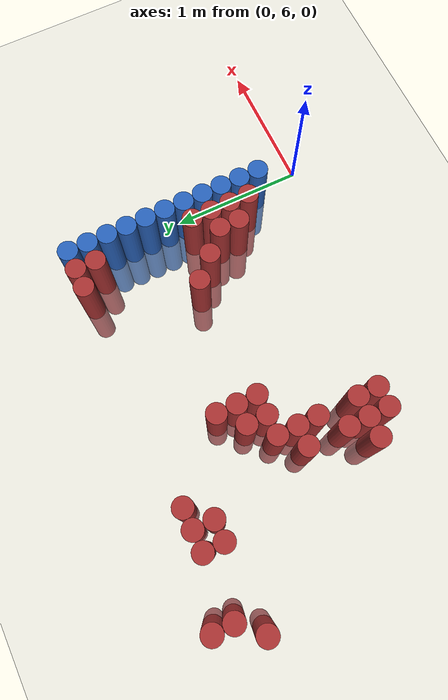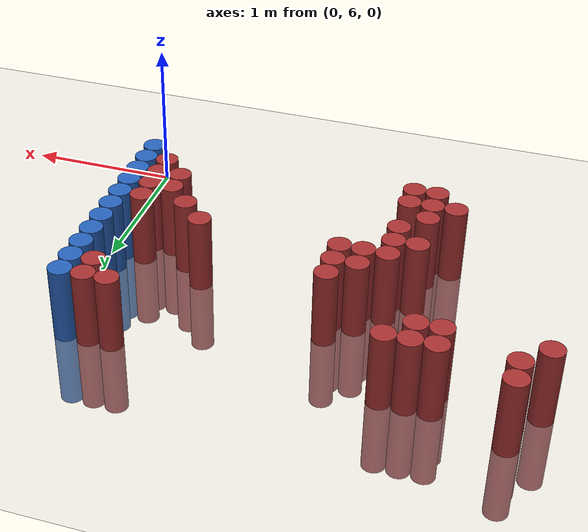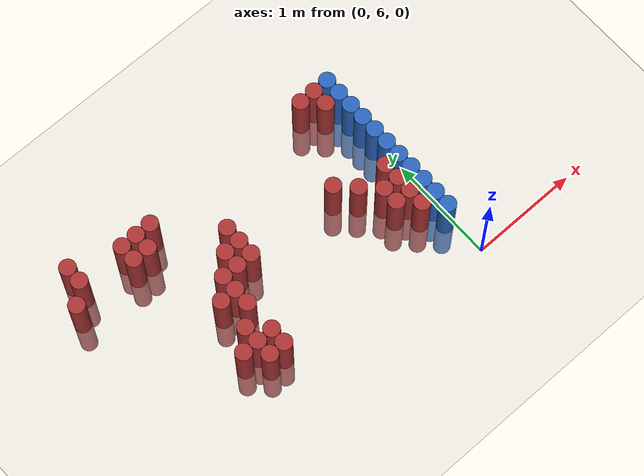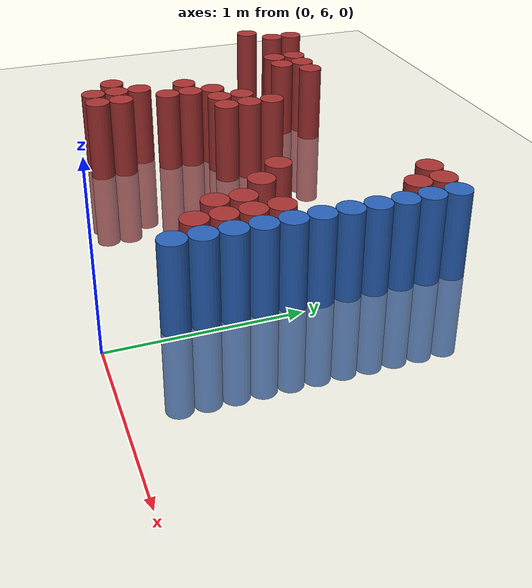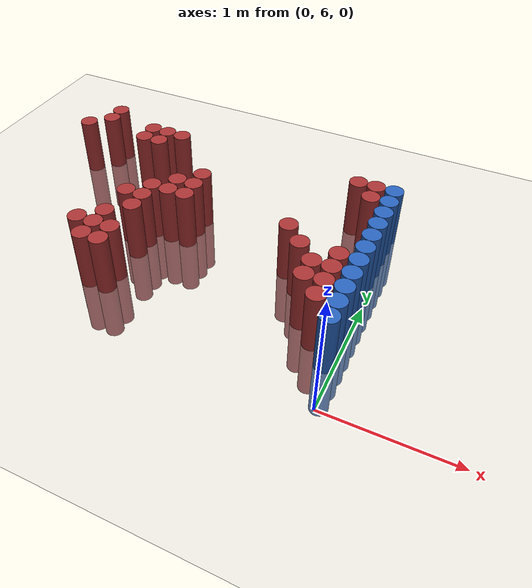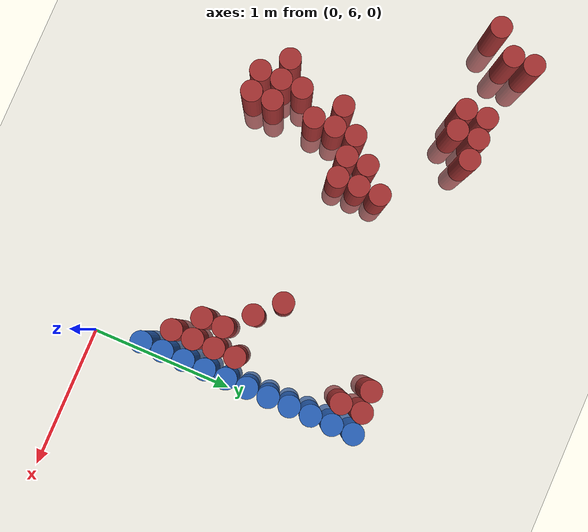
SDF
<sdf version="1.6">
 <world name="default">
  <model name="ground_plane">
   <static>1</static>
   <link name="link">
    <collision name="collision">
     <geometry><plane><normal>0 0 1</normal><size>100 100</size></plane></geometry>
     <surface><friction><ode><mu>100</mu><mu2>50</mu2></ode></friction></surface>
    </collision>
    <visual name="visual">
     <cast_shadows>0</cast_shadows>
     <geometry><plane><normal>0 0 1</normal><size>100 100</size></plane></geometry>
     <material>
      <script><uri>file://media/materials/scripts/gazebo.material</uri><name>Gazebo/Grey</name></script>
     </material>
    </visual>
   </link>
  </model>
  <model name="unit_cylinder_173">
   <static>1</static>
   <pose>-2.925000 7.725000 0.000000 0.000000 0.000000 0.000000</pose>
   <link name="link">
    <inertial>
     <mass>1</mass>
     <inertia><ixx>0.145833</ixx><ixy>0</ixy><ixz>0</ixz><iyy>0.145833</iyy><iyz>0</iyz><izz>0.125</izz></inertia>
    </inertial>
    <collision name="collision">
     <geometry><cylinder><radius>0.075000</radius><length>1</length></cylinder></geometry>
    </collision>
    <visual name="visual">
     <geometry><cylinder><radius>0.075000</radius><length>1</length></cylinder></geometry>
     <material>
      <ambient>0.648000 0.192000 0.192000 1</ambient>
      <diffuse>0.648000 0.192000 0.192000 1</diffuse>
     </material>
     <material>
      <script><name>Gazebo/Grey</name><uri>file://media/materials/scripts/gazebo.material</uri></script>
     </material>
    </visual>
   </link>
  </model>
  <model name="unit_cylinder_175">
   <static>1</static>
   <pose>-2.775000 7.875000 0.000000 0.000000 0.000000 0.000000</pose>
   <link name="link">
    <inertial>
     <mass>1</mass>
     <inertia><ixx>0.145833</ixx><ixy>0</ixy><ixz>0</ixz><iyy>0.145833</iyy><iyz>0</iyz><izz>0.125</izz></inertia>
    </inertial>
    <collision name="collision">
     <geometry><cylinder><radius>0.075000</radius><length>1</length></cylinder></geometry>
    </collision>
    <visual name="visual">
     <geometry><cylinder><radius>0.075000</radius><length>1</length></cylinder></geometry>
     <material>
      <ambient>0.648000 0.192000 0.192000 1</ambient>
      <diffuse>0.648000 0.192000 0.192000 1</diffuse>
     </material>
     <material>
      <script><name>Gazebo/Grey</name><uri>file://media/materials/scripts/gazebo.material</uri></script>
     </material>
    </visual>
   </link>
  </model>
  <model name="unit_cylinder_176">
   <static>1</static>
   <pose>-2.775000 8.025000 0.000000 0.000000 0.000000 0.000000</pose>
   <link name="link">
    <inertial>
     <mass>1</mass>
     <inertia><ixx>0.145833</ixx><ixy>0</ixy><ixz>0</ixz><iyy>0.145833</iyy><iyz>0</iyz><izz>0.125</izz></inertia>
    </inertial>
    <collision name="collision">
     <geometry><cylinder><radius>0.075000</radius><length>1</length></cylinder></geometry>
    </collision>
    <visual name="visual">
     <geometry><cylinder><radius>0.075000</radius><length>1</length></cylinder></geometry>
     <material>
      <ambient>0.648000 0.192000 0.192000 1</ambient>
      <diffuse>0.648000 0.192000 0.192000 1</diffuse>
     </material>
     <material>
      <script><name>Gazebo/Grey</name><uri>file://media/materials/scripts/gazebo.material</uri></script>
     </material>
    </visual>
   </link>
  </model>
  <model name="unit_cylinder_185">
   <static>1</static>
   <pose>-2.325000 7.725000 0.000000 0.000000 0.000000 0.000000</pose>
   <link name="link">
    <inertial>
     <mass>1</mass>
     <inertia><ixx>0.145833</ixx><ixy>0</ixy><ixz>0</ixz><iyy>0.145833</iyy><iyz>0</iyz><izz>0.125</izz></inertia>
    </inertial>
    <collision name="collision">
     <geometry><cylinder><radius>0.075000</radius><length>1</length></cylinder></geometry>
    </collision>
    <visual name="visual">
     <geometry><cylinder><radius>0.075000</radius><length>1</length></cylinder></geometry>
     <material>
      <ambient>0.648000 0.192000 0.192000 1</ambient>
      <diffuse>0.648000 0.192000 0.192000 1</diffuse>
     </material>
     <material>
      <script><name>Gazebo/Grey</name><uri>file://media/materials/scripts/gazebo.material</uri></script>
     </material>
    </visual>
   </link>
  </model>
  <model name="unit_cylinder_186">
   <static>1</static>
   <pose>-2.325000 7.875000 0.000000 0.000000 0.000000 0.000000</pose>
   <link name="link">
    <inertial>
     <mass>1</mass>
     <inertia><ixx>0.145833</ixx><ixy>0</ixy><ixz>0</ixz><iyy>0.145833</iyy><iyz>0</iyz><izz>0.125</izz></inertia>
    </inertial>
    <collision name="collision">
     <geometry><cylinder><radius>0.075000</radius><length>1</length></cylinder></geometry>
    </collision>
    <visual name="visual">
     <geometry><cylinder><radius>0.075000</radius><length>1</length></cylinder></geometry>
     <material>
      <ambient>0.648000 0.192000 0.192000 1</ambient>
      <diffuse>0.648000 0.192000 0.192000 1</diffuse>
     </material>
     <material>
      <script><name>Gazebo/Grey</name><uri>file://media/materials/scripts/gazebo.material</uri></script>
     </material>
    </visual>
   </link>
  </model>
  <model name="unit_cylinder_190">
   <static>1</static>
   <pose>-2.175000 6.525000 0.000000 0.000000 0.000000 0.000000</pose>
   <link name="link">
    <inertial>
     <mass>1</mass>
     <inertia><ixx>0.145833</ixx><ixy>0</ixy><ixz>0</ixz><iyy>0.145833</iyy><iyz>0</iyz><izz>0.125</izz></inertia>
    </inertial>
    <collision name="collision">
     <geometry><cylinder><radius>0.075000</radius><length>1</length></cylinder></geometry>
    </collision>
    <visual name="visual">
     <geometry><cylinder><radius>0.075000</radius><length>1</length></cylinder></geometry>
     <material>
      <ambient>0.648000 0.192000 0.192000 1</ambient>
      <diffuse>0.648000 0.192000 0.192000 1</diffuse>
     </material>
     <material>
      <script><name>Gazebo/Grey</name><uri>file://media/materials/scripts/gazebo.material</uri></script>
     </material>
    </visual>
   </link>
  </model>
  <model name="unit_cylinder_191">
   <static>1</static>
   <pose>-2.175000 7.725000 0.000000 0.000000 0.000000 0.000000</pose>
   <link name="link">
    <inertial>
     <mass>1</mass>
     <inertia><ixx>0.145833</ixx><ixy>0</ixy><ixz>0</ixz><iyy>0.145833</iyy><iyz>0</iyz><izz>0.125</izz></inertia>
    </inertial>
    <collision name="collision">
     <geometry><cylinder><radius>0.075000</radius><length>1</length></cylinder></geometry>
    </collision>
    <visual name="visual">
     <geometry><cylinder><radius>0.075000</radius><length>1</length></cylinder></geometry>
     <material>
      <ambient>0.648000 0.192000 0.192000 1</ambient>
      <diffuse>0.648000 0.192000 0.192000 1</diffuse>
     </material>
     <material>
      <script><name>Gazebo/Grey</name><uri>file://media/materials/scripts/gazebo.material</uri></script>
     </material>
    </visual>
   </link>
  </model>
  <model name="unit_cylinder_192">
   <static>1</static>
   <pose>-2.175000 7.875000 0.000000 0.000000 0.000000 0.000000</pose>
   <link name="link">
    <inertial>
     <mass>1</mass>
     <inertia><ixx>0.145833</ixx><ixy>0</ixy><ixz>0</ixz><iyy>0.145833</iyy><iyz>0</iyz><izz>0.125</izz></inertia>
    </inertial>
    <collision name="collision">
     <geometry><cylinder><radius>0.075000</radius><length>1</length></cylinder></geometry>
    </collision>
    <visual name="visual">
     <geometry><cylinder><radius>0.075000</radius><length>1</length></cylinder></geometry>
     <material>
      <ambient>0.648000 0.192000 0.192000 1</ambient>
      <diffuse>0.648000 0.192000 0.192000 1</diffuse>
     </material>
     <material>
      <script><name>Gazebo/Grey</name><uri>file://media/materials/scripts/gazebo.material</uri></script>
     </material>
    </visual>
   </link>
  </model>
  <model name="unit_cylinder_195">
   <static>1</static>
   <pose>-2.025000 6.375000 0.000000 0.000000 0.000000 0.000000</pose>
   <link name="link">
    <inertial>
     <mass>1</mass>
     <inertia><ixx>0.145833</ixx><ixy>0</ixy><ixz>0</ixz><iyy>0.145833</iyy><iyz>0</iyz><izz>0.125</izz></inertia>
    </inertial>
    <collision name="collision">
     <geometry><cylinder><radius>0.075000</radius><length>1</length></cylinder></geometry>
    </collision>
    <visual name="visual">
     <geometry><cylinder><radius>0.075000</radius><length>1</length></cylinder></geometry>
     <material>
      <ambient>0.648000 0.192000 0.192000 1</ambient>
      <diffuse>0.648000 0.192000 0.192000 1</diffuse>
     </material>
     <material>
      <script><name>Gazebo/Grey</name><uri>file://media/materials/scripts/gazebo.material</uri></script>
     </material>
    </visual>
   </link>
  </model>
  <model name="unit_cylinder_196">
   <static>1</static>
   <pose>-2.025000 6.525000 0.000000 0.000000 0.000000 0.000000</pose>
   <link name="link">
    <inertial>
     <mass>1</mass>
     <inertia><ixx>0.145833</ixx><ixy>0</ixy><ixz>0</ixz><iyy>0.145833</iyy><iyz>0</iyz><izz>0.125</izz></inertia>
    </inertial>
    <collision name="collision">
     <geometry><cylinder><radius>0.075000</radius><length>1</length></cylinder></geometry>
    </collision>
    <visual name="visual">
     <geometry><cylinder><radius>0.075000</radius><length>1</length></cylinder></geometry>
     <material>
      <ambient>0.648000 0.192000 0.192000 1</ambient>
      <diffuse>0.648000 0.192000 0.192000 1</diffuse>
     </material>
     <material>
      <script><name>Gazebo/Grey</name><uri>file://media/materials/scripts/gazebo.material</uri></script>
     </material>
    </visual>
   </link>
  </model>
  <model name="unit_cylinder_197">
   <static>1</static>
   <pose>-2.025000 6.675000 0.000000 0.000000 0.000000 0.000000</pose>
   <link name="link">
    <inertial>
     <mass>1</mass>
     <inertia><ixx>0.145833</ixx><ixy>0</ixy><ixz>0</ixz><iyy>0.145833</iyy><iyz>0</iyz><izz>0.125</izz></inertia>
    </inertial>
    <collision name="collision">
     <geometry><cylinder><radius>0.075000</radius><length>1</length></cylinder></geometry>
    </collision>
    <visual name="visual">
     <geometry><cylinder><radius>0.075000</radius><length>1</length></cylinder></geometry>
     <material>
      <ambient>0.648000 0.192000 0.192000 1</ambient>
      <diffuse>0.648000 0.192000 0.192000 1</diffuse>
     </material>
     <material>
      <script><name>Gazebo/Grey</name><uri>file://media/materials/scripts/gazebo.material</uri></script>
     </material>
    </visual>
   </link>
  </model>
  <model name="unit_cylinder_198">
   <static>1</static>
   <pose>-2.025000 6.975000 0.000000 0.000000 0.000000 0.000000</pose>
   <link name="link">
    <inertial>
     <mass>1</mass>
     <inertia><ixx>0.145833</ixx><ixy>0</ixy><ixz>0</ixz><iyy>0.145833</iyy><iyz>0</iyz><izz>0.125</izz></inertia>
    </inertial>
    <collision name="collision">
     <geometry><cylinder><radius>0.075000</radius><length>1</length></cylinder></geometry>
    </collision>
    <visual name="visual">
     <geometry><cylinder><radius>0.075000</radius><length>1</length></cylinder></geometry>
     <material>
      <ambient>0.648000 0.192000 0.192000 1</ambient>
      <diffuse>0.648000 0.192000 0.192000 1</diffuse>
     </material>
     <material>
      <script><name>Gazebo/Grey</name><uri>file://media/materials/scripts/gazebo.material</uri></script>
     </material>
    </visual>
   </link>
  </model>
  <model name="unit_cylinder_199">
   <static>1</static>
   <pose>-2.025000 7.875000 0.000000 0.000000 0.000000 0.000000</pose>
   <link name="link">
    <inertial>
     <mass>1</mass>
     <inertia><ixx>0.145833</ixx><ixy>0</ixy><ixz>0</ixz><iyy>0.145833</iyy><iyz>0</iyz><izz>0.125</izz></inertia>
    </inertial>
    <collision name="collision">
     <geometry><cylinder><radius>0.075000</radius><length>1</length></cylinder></geometry>
    </collision>
    <visual name="visual">
     <geometry><cylinder><radius>0.075000</radius><length>1</length></cylinder></geometry>
     <material>
      <ambient>0.648000 0.192000 0.192000 1</ambient>
      <diffuse>0.648000 0.192000 0.192000 1</diffuse>
     </material>
     <material>
      <script><name>Gazebo/Grey</name><uri>file://media/materials/scripts/gazebo.material</uri></script>
     </material>
    </visual>
   </link>
  </model>
  <model name="unit_cylinder_203">
   <static>1</static>
   <pose>-1.875000 6.375000 0.000000 0.000000 0.000000 0.000000</pose>
   <link name="link">
    <inertial>
     <mass>1</mass>
     <inertia><ixx>0.145833</ixx><ixy>0</ixy><ixz>0</ixz><iyy>0.145833</iyy><iyz>0</iyz><izz>0.125</izz></inertia>
    </inertial>
    <collision name="collision">
     <geometry><cylinder><radius>0.075000</radius><length>1</length></cylinder></geometry>
    </collision>
    <visual name="visual">
     <geometry><cylinder><radius>0.075000</radius><length>1</length></cylinder></geometry>
     <material>
      <ambient>0.648000 0.192000 0.192000 1</ambient>
      <diffuse>0.648000 0.192000 0.192000 1</diffuse>
     </material>
     <material>
      <script><name>Gazebo/Grey</name><uri>file://media/materials/scripts/gazebo.material</uri></script>
     </material>
    </visual>
   </link>
  </model>
  <model name="unit_cylinder_204">
   <static>1</static>
   <pose>-1.875000 6.525000 0.000000 0.000000 0.000000 0.000000</pose>
   <link name="link">
    <inertial>
     <mass>1</mass>
     <inertia><ixx>0.145833</ixx><ixy>0</ixy><ixz>0</ixz><iyy>0.145833</iyy><iyz>0</iyz><izz>0.125</izz></inertia>
    </inertial>
    <collision name="collision">
     <geometry><cylinder><radius>0.075000</radius><length>1</length></cylinder></geometry>
    </collision>
    <visual name="visual">
     <geometry><cylinder><radius>0.075000</radius><length>1</length></cylinder></geometry>
     <material>
      <ambient>0.648000 0.192000 0.192000 1</ambient>
      <diffuse>0.648000 0.192000 0.192000 1</diffuse>
     </material>
     <material>
      <script><name>Gazebo/Grey</name><uri>file://media/materials/scripts/gazebo.material</uri></script>
     </material>
    </visual>
   </link>
  </model>
  <model name="unit_cylinder_205">
   <static>1</static>
   <pose>-1.875000 6.825000 0.000000 0.000000 0.000000 0.000000</pose>
   <link name="link">
    <inertial>
     <mass>1</mass>
     <inertia><ixx>0.145833</ixx><ixy>0</ixy><ixz>0</ixz><iyy>0.145833</iyy><iyz>0</iyz><izz>0.125</izz></inertia>
    </inertial>
    <collision name="collision">
     <geometry><cylinder><radius>0.075000</radius><length>1</length></cylinder></geometry>
    </collision>
    <visual name="visual">
     <geometry><cylinder><radius>0.075000</radius><length>1</length></cylinder></geometry>
     <material>
      <ambient>0.648000 0.192000 0.192000 1</ambient>
      <diffuse>0.648000 0.192000 0.192000 1</diffuse>
     </material>
     <material>
      <script><name>Gazebo/Grey</name><uri>file://media/materials/scripts/gazebo.material</uri></script>
     </material>
    </visual>
   </link>
  </model>
  <model name="unit_cylinder_206">
   <static>1</static>
   <pose>-1.875000 6.975000 0.000000 0.000000 0.000000 0.000000</pose>
   <link name="link">
    <inertial>
     <mass>1</mass>
     <inertia><ixx>0.145833</ixx><ixy>0</ixy><ixz>0</ixz><iyy>0.145833</iyy><iyz>0</iyz><izz>0.125</izz></inertia>
    </inertial>
    <collision name="collision">
     <geometry><cylinder><radius>0.075000</radius><length>1</length></cylinder></geometry>
    </collision>
    <visual name="visual">
     <geometry><cylinder><radius>0.075000</radius><length>1</length></cylinder></geometry>
     <material>
      <ambient>0.648000 0.192000 0.192000 1</ambient>
      <diffuse>0.648000 0.192000 0.192000 1</diffuse>
     </material>
     <material>
      <script><name>Gazebo/Grey</name><uri>file://media/materials/scripts/gazebo.material</uri></script>
     </material>
    </visual>
   </link>
  </model>
  <model name="unit_cylinder_207">
   <static>1</static>
   <pose>-1.875000 7.125000 0.000000 0.000000 0.000000 0.000000</pose>
   <link name="link">
    <inertial>
     <mass>1</mass>
     <inertia><ixx>0.145833</ixx><ixy>0</ixy><ixz>0</ixz><iyy>0.145833</iyy><iyz>0</iyz><izz>0.125</izz></inertia>
    </inertial>
    <collision name="collision">
     <geometry><cylinder><radius>0.075000</radius><length>1</length></cylinder></geometry>
    </collision>
    <visual name="visual">
     <geometry><cylinder><radius>0.075000</radius><length>1</length></cylinder></geometry>
     <material>
      <ambient>0.648000 0.192000 0.192000 1</ambient>
      <diffuse>0.648000 0.192000 0.192000 1</diffuse>
     </material>
     <material>
      <script><name>Gazebo/Grey</name><uri>file://media/materials/scripts/gazebo.material</uri></script>
     </material>
    </visual>
   </link>
  </model>
  <model name="unit_cylinder_209">
   <static>1</static>
   <pose>-1.725000 7.125000 0.000000 0.000000 0.000000 0.000000</pose>
   <link name="link">
    <inertial>
     <mass>1</mass>
     <inertia><ixx>0.145833</ixx><ixy>0</ixy><ixz>0</ixz><iyy>0.145833</iyy><iyz>0</iyz><izz>0.125</izz></inertia>
    </inertial>
    <collision name="collision">
     <geometry><cylinder><radius>0.075000</radius><length>1</length></cylinder></geometry>
    </collision>
    <visual name="visual">
     <geometry><cylinder><radius>0.075000</radius><length>1</length></cylinder></geometry>
     <material>
      <ambient>0.648000 0.192000 0.192000 1</ambient>
      <diffuse>0.648000 0.192000 0.192000 1</diffuse>
     </material>
     <material>
      <script><name>Gazebo/Grey</name><uri>file://media/materials/scripts/gazebo.material</uri></script>
     </material>
    </visual>
   </link>
  </model>
  <model name="unit_cylinder_210">
   <static>1</static>
   <pose>-1.725000 7.275000 0.000000 0.000000 0.000000 0.000000</pose>
   <link name="link">
    <inertial>
     <mass>1</mass>
     <inertia><ixx>0.145833</ixx><ixy>0</ixy><ixz>0</ixz><iyy>0.145833</iyy><iyz>0</iyz><izz>0.125</izz></inertia>
    </inertial>
    <collision name="collision">
     <geometry><cylinder><radius>0.075000</radius><length>1</length></cylinder></geometry>
    </collision>
    <visual name="visual">
     <geometry><cylinder><radius>0.075000</radius><length>1</length></cylinder></geometry>
     <material>
      <ambient>0.648000 0.192000 0.192000 1</ambient>
      <diffuse>0.648000 0.192000 0.192000 1</diffuse>
     </material>
     <material>
      <script><name>Gazebo/Grey</name><uri>file://media/materials/scripts/gazebo.material</uri></script>
     </material>
    </visual>
   </link>
  </model>
  <model name="unit_cylinder_211">
   <static>1</static>
   <pose>-1.575000 7.125000 0.000000 0.000000 0.000000 0.000000</pose>
   <link name="link">
    <inertial>
     <mass>1</mass>
     <inertia><ixx>0.145833</ixx><ixy>0</ixy><ixz>0</ixz><iyy>0.145833</iyy><iyz>0</iyz><izz>0.125</izz></inertia>
    </inertial>
    <collision name="collision">
     <geometry><cylinder><radius>0.075000</radius><length>1</length></cylinder></geometry>
    </collision>
    <visual name="visual">
     <geometry><cylinder><radius>0.075000</radius><length>1</length></cylinder></geometry>
     <material>
      <ambient>0.648000 0.192000 0.192000 1</ambient>
      <diffuse>0.648000 0.192000 0.192000 1</diffuse>
     </material>
     <material>
      <script><name>Gazebo/Grey</name><uri>file://media/materials/scripts/gazebo.material</uri></script>
     </material>
    </visual>
   </link>
  </model>
  <model name="unit_cylinder_212">
   <static>1</static>
   <pose>-1.575000 7.275000 0.000000 0.000000 0.000000 0.000000</pose>
   <link name="link">
    <inertial>
     <mass>1</mass>
     <inertia><ixx>0.145833</ixx><ixy>0</ixy><ixz>0</ixz><iyy>0.145833</iyy><iyz>0</iyz><izz>0.125</izz></inertia>
    </inertial>
    <collision name="collision">
     <geometry><cylinder><radius>0.075000</radius><length>1</length></cylinder></geometry>
    </collision>
    <visual name="visual">
     <geometry><cylinder><radius>0.075000</radius><length>1</length></cylinder></geometry>
     <material>
      <ambient>0.648000 0.192000 0.192000 1</ambient>
      <diffuse>0.648000 0.192000 0.192000 1</diffuse>
     </material>
     <material>
      <script><name>Gazebo/Grey</name><uri>file://media/materials/scripts/gazebo.material</uri></script>
     </material>
    </visual>
   </link>
  </model>
  <model name="unit_cylinder_213">
   <static>1</static>
   <pose>-1.575000 7.425000 0.000000 0.000000 0.000000 0.000000</pose>
   <link name="link">
    <inertial>
     <mass>1</mass>
     <inertia><ixx>0.145833</ixx><ixy>0</ixy><ixz>0</ixz><iyy>0.145833</iyy><iyz>0</iyz><izz>0.125</izz></inertia>
    </inertial>
    <collision name="collision">
     <geometry><cylinder><radius>0.075000</radius><length>1</length></cylinder></geometry>
    </collision>
    <visual name="visual">
     <geometry><cylinder><radius>0.075000</radius><length>1</length></cylinder></geometry>
     <material>
      <ambient>0.648000 0.192000 0.192000 1</ambient>
      <diffuse>0.648000 0.192000 0.192000 1</diffuse>
     </material>
     <material>
      <script><name>Gazebo/Grey</name><uri>file://media/materials/scripts/gazebo.material</uri></script>
     </material>
    </visual>
   </link>
  </model>
  <model name="unit_cylinder_219">
   <static>1</static>
   <pose>-0.675000 7.125000 0.000000 0.000000 0.000000 0.000000</pose>
   <link name="link">
    <inertial>
     <mass>1</mass>
     <inertia><ixx>0.145833</ixx><ixy>0</ixy><ixz>0</ixz><iyy>0.145833</iyy><iyz>0</iyz><izz>0.125</izz></inertia>
    </inertial>
    <collision name="collision">
     <geometry><cylinder><radius>0.075000</radius><length>1</length></cylinder></geometry>
    </collision>
    <visual name="visual">
     <geometry><cylinder><radius>0.075000</radius><length>1</length></cylinder></geometry>
     <material>
      <ambient>0.648000 0.192000 0.192000 1</ambient>
      <diffuse>0.648000 0.192000 0.192000 1</diffuse>
     </material>
     <material>
      <script><name>Gazebo/Grey</name><uri>file://media/materials/scripts/gazebo.material</uri></script>
     </material>
    </visual>
   </link>
  </model>
  <model name="unit_cylinder_223">
   <static>1</static>
   <pose>-0.525000 6.975000 0.000000 0.000000 0.000000 0.000000</pose>
   <link name="link">
    <inertial>
     <mass>1</mass>
     <inertia><ixx>0.145833</ixx><ixy>0</ixy><ixz>0</ixz><iyy>0.145833</iyy><iyz>0</iyz><izz>0.125</izz></inertia>
    </inertial>
    <collision name="collision">
     <geometry><cylinder><radius>0.075000</radius><length>1</length></cylinder></geometry>
    </collision>
    <visual name="visual">
     <geometry><cylinder><radius>0.075000</radius><length>1</length></cylinder></geometry>
     <material>
      <ambient>0.648000 0.192000 0.192000 1</ambient>
      <diffuse>0.648000 0.192000 0.192000 1</diffuse>
     </material>
     <material>
      <script><name>Gazebo/Grey</name><uri>file://media/materials/scripts/gazebo.material</uri></script>
     </material>
    </visual>
   </link>
  </model>
  <model name="unit_cylinder_228">
   <static>1</static>
   <pose>-0.375000 6.675000 0.000000 0.000000 0.000000 0.000000</pose>
   <link name="link">
    <inertial>
     <mass>1</mass>
     <inertia><ixx>0.145833</ixx><ixy>0</ixy><ixz>0</ixz><iyy>0.145833</iyy><iyz>0</iyz><izz>0.125</izz></inertia>
    </inertial>
    <collision name="collision">
     <geometry><cylinder><radius>0.075000</radius><length>1</length></cylinder></geometry>
    </collision>
    <visual name="visual">
     <geometry><cylinder><radius>0.075000</radius><length>1</length></cylinder></geometry>
     <material>
      <ambient>0.648000 0.192000 0.192000 1</ambient>
      <diffuse>0.648000 0.192000 0.192000 1</diffuse>
     </material>
     <material>
      <script><name>Gazebo/Grey</name><uri>file://media/materials/scripts/gazebo.material</uri></script>
     </material>
    </visual>
   </link>
  </model>
  <model name="unit_cylinder_229">
   <static>1</static>
   <pose>-0.375000 6.825000 0.000000 0.000000 0.000000 0.000000</pose>
   <link name="link">
    <inertial>
     <mass>1</mass>
     <inertia><ixx>0.145833</ixx><ixy>0</ixy><ixz>0</ixz><iyy>0.145833</iyy><iyz>0</iyz><izz>0.125</izz></inertia>
    </inertial>
    <collision name="collision">
     <geometry><cylinder><radius>0.075000</radius><length>1</length></cylinder></geometry>
    </collision>
    <visual name="visual">
     <geometry><cylinder><radius>0.075000</radius><length>1</length></cylinder></geometry>
     <material>
      <ambient>0.648000 0.192000 0.192000 1</ambient>
      <diffuse>0.648000 0.192000 0.192000 1</diffuse>
     </material>
     <material>
      <script><name>Gazebo/Grey</name><uri>file://media/materials/scripts/gazebo.material</uri></script>
     </material>
    </visual>
   </link>
  </model>
  <model name="unit_cylinder_230">
   <static>1</static>
   <pose>-0.375000 7.875000 0.000000 0.000000 0.000000 0.000000</pose>
   <link name="link">
    <inertial>
     <mass>1</mass>
     <inertia><ixx>0.145833</ixx><ixy>0</ixy><ixz>0</ixz><iyy>0.145833</iyy><iyz>0</iyz><izz>0.125</izz></inertia>
    </inertial>
    <collision name="collision">
     <geometry><cylinder><radius>0.075000</radius><length>1</length></cylinder></geometry>
    </collision>
    <visual name="visual">
     <geometry><cylinder><radius>0.075000</radius><length>1</length></cylinder></geometry>
     <material>
      <ambient>0.648000 0.192000 0.192000 1</ambient>
      <diffuse>0.648000 0.192000 0.192000 1</diffuse>
     </material>
     <material>
      <script><name>Gazebo/Grey</name><uri>file://media/materials/scripts/gazebo.material</uri></script>
     </material>
    </visual>
   </link>
  </model>
  <model name="unit_cylinder_233">
   <static>1</static>
   <pose>-0.225000 6.525000 0.000000 0.000000 0.000000 0.000000</pose>
   <link name="link">
    <inertial>
     <mass>1</mass>
     <inertia><ixx>0.145833</ixx><ixy>0</ixy><ixz>0</ixz><iyy>0.145833</iyy><iyz>0</iyz><izz>0.125</izz></inertia>
    </inertial>
    <collision name="collision">
     <geometry><cylinder><radius>0.075000</radius><length>1</length></cylinder></geometry>
    </collision>
    <visual name="visual">
     <geometry><cylinder><radius>0.075000</radius><length>1</length></cylinder></geometry>
     <material>
      <ambient>0.648000 0.192000 0.192000 1</ambient>
      <diffuse>0.648000 0.192000 0.192000 1</diffuse>
     </material>
     <material>
      <script><name>Gazebo/Grey</name><uri>file://media/materials/scripts/gazebo.material</uri></script>
     </material>
    </visual>
   </link>
  </model>
  <model name="unit_cylinder_234">
   <static>1</static>
   <pose>-0.225000 6.675000 0.000000 0.000000 0.000000 0.000000</pose>
   <link name="link">
    <inertial>
     <mass>1</mass>
     <inertia><ixx>0.145833</ixx><ixy>0</ixy><ixz>0</ixz><iyy>0.145833</iyy><iyz>0</iyz><izz>0.125</izz></inertia>
    </inertial>
    <collision name="collision">
     <geometry><cylinder><radius>0.075000</radius><length>1</length></cylinder></geometry>
    </collision>
    <visual name="visual">
     <geometry><cylinder><radius>0.075000</radius><length>1</length></cylinder></geometry>
     <material>
      <ambient>0.648000 0.192000 0.192000 1</ambient>
      <diffuse>0.648000 0.192000 0.192000 1</diffuse>
     </material>
     <material>
      <script><name>Gazebo/Grey</name><uri>file://media/materials/scripts/gazebo.material</uri></script>
     </material>
    </visual>
   </link>
  </model>
  <model name="unit_cylinder_235">
   <static>1</static>
   <pose>-0.225000 6.825000 0.000000 0.000000 0.000000 0.000000</pose>
   <link name="link">
    <inertial>
     <mass>1</mass>
     <inertia><ixx>0.145833</ixx><ixy>0</ixy><ixz>0</ixz><iyy>0.145833</iyy><iyz>0</iyz><izz>0.125</izz></inertia>
    </inertial>
    <collision name="collision">
     <geometry><cylinder><radius>0.075000</radius><length>1</length></cylinder></geometry>
    </collision>
    <visual name="visual">
     <geometry><cylinder><radius>0.075000</radius><length>1</length></cylinder></geometry>
     <material>
      <ambient>0.648000 0.192000 0.192000 1</ambient>
      <diffuse>0.648000 0.192000 0.192000 1</diffuse>
     </material>
     <material>
      <script><name>Gazebo/Grey</name><uri>file://media/materials/scripts/gazebo.material</uri></script>
     </material>
    </visual>
   </link>
  </model>
  <model name="unit_cylinder_236">
   <static>1</static>
   <pose>-0.225000 6.975000 0.000000 0.000000 0.000000 0.000000</pose>
   <link name="link">
    <inertial>
     <mass>1</mass>
     <inertia><ixx>0.145833</ixx><ixy>0</ixy><ixz>0</ixz><iyy>0.145833</iyy><iyz>0</iyz><izz>0.125</izz></inertia>
    </inertial>
    <collision name="collision">
     <geometry><cylinder><radius>0.075000</radius><length>1</length></cylinder></geometry>
    </collision>
    <visual name="visual">
     <geometry><cylinder><radius>0.075000</radius><length>1</length></cylinder></geometry>
     <material>
      <ambient>0.648000 0.192000 0.192000 1</ambient>
      <diffuse>0.648000 0.192000 0.192000 1</diffuse>
     </material>
     <material>
      <script><name>Gazebo/Grey</name><uri>file://media/materials/scripts/gazebo.material</uri></script>
     </material>
    </visual>
   </link>
  </model>
  <model name="unit_cylinder_237">
   <static>1</static>
   <pose>-0.225000 7.725000 0.000000 0.000000 0.000000 0.000000</pose>
   <link name="link">
    <inertial>
     <mass>1</mass>
     <inertia><ixx>0.145833</ixx><ixy>0</ixy><ixz>0</ixz><iyy>0.145833</iyy><iyz>0</iyz><izz>0.125</izz></inertia>
    </inertial>
    <collision name="collision">
     <geometry><cylinder><radius>0.075000</radius><length>1</length></cylinder></geometry>
    </collision>
    <visual name="visual">
     <geometry><cylinder><radius>0.075000</radius><length>1</length></cylinder></geometry>
     <material>
      <ambient>0.648000 0.192000 0.192000 1</ambient>
      <diffuse>0.648000 0.192000 0.192000 1</diffuse>
     </material>
     <material>
      <script><name>Gazebo/Grey</name><uri>file://media/materials/scripts/gazebo.material</uri></script>
     </material>
    </visual>
   </link>
  </model>
  <model name="unit_cylinder_238">
   <static>1</static>
   <pose>-0.225000 7.875000 0.000000 0.000000 0.000000 0.000000</pose>
   <link name="link">
    <inertial>
     <mass>1</mass>
     <inertia><ixx>0.145833</ixx><ixy>0</ixy><ixz>0</ixz><iyy>0.145833</iyy><iyz>0</iyz><izz>0.125</izz></inertia>
    </inertial>
    <collision name="collision">
     <geometry><cylinder><radius>0.075000</radius><length>1</length></cylinder></geometry>
    </collision>
    <visual name="visual">
     <geometry><cylinder><radius>0.075000</radius><length>1</length></cylinder></geometry>
     <material>
      <ambient>0.648000 0.192000 0.192000 1</ambient>
      <diffuse>0.648000 0.192000 0.192000 1</diffuse>
     </material>
     <material>
      <script><name>Gazebo/Grey</name><uri>file://media/materials/scripts/gazebo.material</uri></script>
     </material>
    </visual>
   </link>
  </model>
  <model name="unit_cylinder_253">
   <static>1</static>
   <pose>-0.075000 6.375000 0.000000 0.000000 0.000000 0.000000</pose>
   <link name="link">
    <inertial>
     <mass>1</mass>
     <inertia><ixx>0.145833</ixx><ixy>0</ixy><ixz>0</ixz><iyy>0.145833</iyy><iyz>0</iyz><izz>0.125</izz></inertia>
    </inertial>
    <collision name="collision">
     <geometry><cylinder><radius>0.075000</radius><length>1</length></cylinder></geometry>
    </collision>
    <visual name="visual">
     <geometry><cylinder><radius>0.075000</radius><length>1</length></cylinder></geometry>
     <material>
      <ambient>0.152000 0.379000 0.720000 1</ambient>
      <diffuse>0.152000 0.379000 0.720000 1</diffuse>
     </material>
     <material>
      <script><name>Gazebo/Grey</name><uri>file://media/materials/scripts/gazebo.material</uri></script>
     </material>
    </visual>
   </link>
  </model>
  <model name="unit_cylinder_254">
   <static>1</static>
   <pose>-0.075000 6.525000 0.000000 0.000000 0.000000 0.000000</pose>
   <link name="link">
    <inertial>
     <mass>1</mass>
     <inertia><ixx>0.145833</ixx><ixy>0</ixy><ixz>0</ixz><iyy>0.145833</iyy><iyz>0</iyz><izz>0.125</izz></inertia>
    </inertial>
    <collision name="collision">
     <geometry><cylinder><radius>0.075000</radius><length>1</length></cylinder></geometry>
    </collision>
    <visual name="visual">
     <geometry><cylinder><radius>0.075000</radius><length>1</length></cylinder></geometry>
     <material>
      <ambient>0.152000 0.379000 0.720000 1</ambient>
      <diffuse>0.152000 0.379000 0.720000 1</diffuse>
     </material>
     <material>
      <script><name>Gazebo/Grey</name><uri>file://media/materials/scripts/gazebo.material</uri></script>
     </material>
    </visual>
   </link>
  </model>
  <model name="unit_cylinder_255">
   <static>1</static>
   <pose>-0.075000 6.675000 0.000000 0.000000 0.000000 0.000000</pose>
   <link name="link">
    <inertial>
     <mass>1</mass>
     <inertia><ixx>0.145833</ixx><ixy>0</ixy><ixz>0</ixz><iyy>0.145833</iyy><iyz>0</iyz><izz>0.125</izz></inertia>
    </inertial>
    <collision name="collision">
     <geometry><cylinder><radius>0.075000</radius><length>1</length></cylinder></geometry>
    </collision>
    <visual name="visual">
     <geometry><cylinder><radius>0.075000</radius><length>1</length></cylinder></geometry>
     <material>
      <ambient>0.152000 0.379000 0.720000 1</ambient>
      <diffuse>0.152000 0.379000 0.720000 1</diffuse>
     </material>
     <material>
      <script><name>Gazebo/Grey</name><uri>file://media/materials/scripts/gazebo.material</uri></script>
     </material>
    </visual>
   </link>
  </model>
  <model name="unit_cylinder_256">
   <static>1</static>
   <pose>-0.075000 6.825000 0.000000 0.000000 0.000000 0.000000</pose>
   <link name="link">
    <inertial>
     <mass>1</mass>
     <inertia><ixx>0.145833</ixx><ixy>0</ixy><ixz>0</ixz><iyy>0.145833</iyy><iyz>0</iyz><izz>0.125</izz></inertia>
    </inertial>
    <collision name="collision">
     <geometry><cylinder><radius>0.075000</radius><length>1</length></cylinder></geometry>
    </collision>
    <visual name="visual">
     <geometry><cylinder><radius>0.075000</radius><length>1</length></cylinder></geometry>
     <material>
      <ambient>0.152000 0.379000 0.720000 1</ambient>
      <diffuse>0.152000 0.379000 0.720000 1</diffuse>
     </material>
     <material>
      <script><name>Gazebo/Grey</name><uri>file://media/materials/scripts/gazebo.material</uri></script>
     </material>
    </visual>
   </link>
  </model>
  <model name="unit_cylinder_257">
   <static>1</static>
   <pose>-0.075000 6.975000 0.000000 0.000000 0.000000 0.000000</pose>
   <link name="link">
    <inertial>
     <mass>1</mass>
     <inertia><ixx>0.145833</ixx><ixy>0</ixy><ixz>0</ixz><iyy>0.145833</iyy><iyz>0</iyz><izz>0.125</izz></inertia>
    </inertial>
    <collision name="collision">
     <geometry><cylinder><radius>0.075000</radius><length>1</length></cylinder></geometry>
    </collision>
    <visual name="visual">
     <geometry><cylinder><radius>0.075000</radius><length>1</length></cylinder></geometry>
     <material>
      <ambient>0.152000 0.379000 0.720000 1</ambient>
      <diffuse>0.152000 0.379000 0.720000 1</diffuse>
     </material>
     <material>
      <script><name>Gazebo/Grey</name><uri>file://media/materials/scripts/gazebo.material</uri></script>
     </material>
    </visual>
   </link>
  </model>
  <model name="unit_cylinder_258">
   <static>1</static>
   <pose>-0.075000 7.125000 0.000000 0.000000 0.000000 0.000000</pose>
   <link name="link">
    <inertial>
     <mass>1</mass>
     <inertia><ixx>0.145833</ixx><ixy>0</ixy><ixz>0</ixz><iyy>0.145833</iyy><iyz>0</iyz><izz>0.125</izz></inertia>
    </inertial>
    <collision name="collision">
     <geometry><cylinder><radius>0.075000</radius><length>1</length></cylinder></geometry>
    </collision>
    <visual name="visual">
     <geometry><cylinder><radius>0.075000</radius><length>1</length></cylinder></geometry>
     <material>
      <ambient>0.152000 0.379000 0.720000 1</ambient>
      <diffuse>0.152000 0.379000 0.720000 1</diffuse>
     </material>
     <material>
      <script><name>Gazebo/Grey</name><uri>file://media/materials/scripts/gazebo.material</uri></script>
     </material>
    </visual>
   </link>
  </model>
  <model name="unit_cylinder_259">
   <static>1</static>
   <pose>-0.075000 7.275000 0.000000 0.000000 0.000000 0.000000</pose>
   <link name="link">
    <inertial>
     <mass>1</mass>
     <inertia><ixx>0.145833</ixx><ixy>0</ixy><ixz>0</ixz><iyy>0.145833</iyy><iyz>0</iyz><izz>0.125</izz></inertia>
    </inertial>
    <collision name="collision">
     <geometry><cylinder><radius>0.075000</radius><length>1</length></cylinder></geometry>
    </collision>
    <visual name="visual">
     <geometry><cylinder><radius>0.075000</radius><length>1</length></cylinder></geometry>
     <material>
      <ambient>0.152000 0.379000 0.720000 1</ambient>
      <diffuse>0.152000 0.379000 0.720000 1</diffuse>
     </material>
     <material>
      <script><name>Gazebo/Grey</name><uri>file://media/materials/scripts/gazebo.material</uri></script>
     </material>
    </visual>
   </link>
  </model>
  <model name="unit_cylinder_260">
   <static>1</static>
   <pose>-0.075000 7.425000 0.000000 0.000000 0.000000 0.000000</pose>
   <link name="link">
    <inertial>
     <mass>1</mass>
     <inertia><ixx>0.145833</ixx><ixy>0</ixy><ixz>0</ixz><iyy>0.145833</iyy><iyz>0</iyz><izz>0.125</izz></inertia>
    </inertial>
    <collision name="collision">
     <geometry><cylinder><radius>0.075000</radius><length>1</length></cylinder></geometry>
    </collision>
    <visual name="visual">
     <geometry><cylinder><radius>0.075000</radius><length>1</length></cylinder></geometry>
     <material>
      <ambient>0.152000 0.379000 0.720000 1</ambient>
      <diffuse>0.152000 0.379000 0.720000 1</diffuse>
     </material>
     <material>
      <script><name>Gazebo/Grey</name><uri>file://media/materials/scripts/gazebo.material</uri></script>
     </material>
    </visual>
   </link>
  </model>
  <model name="unit_cylinder_261">
   <static>1</static>
   <pose>-0.075000 7.575000 0.000000 0.000000 0.000000 0.000000</pose>
   <link name="link">
    <inertial>
     <mass>1</mass>
     <inertia><ixx>0.145833</ixx><ixy>0</ixy><ixz>0</ixz><iyy>0.145833</iyy><iyz>0</iyz><izz>0.125</izz></inertia>
    </inertial>
    <collision name="collision">
     <geometry><cylinder><radius>0.075000</radius><length>1</length></cylinder></geometry>
    </collision>
    <visual name="visual">
     <geometry><cylinder><radius>0.075000</radius><length>1</length></cylinder></geometry>
     <material>
      <ambient>0.152000 0.379000 0.720000 1</ambient>
      <diffuse>0.152000 0.379000 0.720000 1</diffuse>
     </material>
     <material>
      <script><name>Gazebo/Grey</name><uri>file://media/materials/scripts/gazebo.material</uri></script>
     </material>
    </visual>
   </link>
  </model>
  <model name="unit_cylinder_262">
   <static>1</static>
   <pose>-0.075000 7.725000 0.000000 0.000000 0.000000 0.000000</pose>
   <link name="link">
    <inertial>
     <mass>1</mass>
     <inertia><ixx>0.145833</ixx><ixy>0</ixy><ixz>0</ixz><iyy>0.145833</iyy><iyz>0</iyz><izz>0.125</izz></inertia>
    </inertial>
    <collision name="collision">
     <geometry><cylinder><radius>0.075000</radius><length>1</length></cylinder></geometry>
    </collision>
    <visual name="visual">
     <geometry><cylinder><radius>0.075000</radius><length>1</length></cylinder></geometry>
     <material>
      <ambient>0.152000 0.379000 0.720000 1</ambient>
      <diffuse>0.152000 0.379000 0.720000 1</diffuse>
     </material>
     <material>
      <script><name>Gazebo/Grey</name><uri>file://media/materials/scripts/gazebo.material</uri></script>
     </material>
    </visual>
   </link>
  </model>
  <model name="unit_cylinder_263">
   <static>1</static>
   <pose>-0.075000 7.875000 0.000000 0.000000 0.000000 0.000000</pose>
   <link name="link">
    <inertial>
     <mass>1</mass>
     <inertia><ixx>0.145833</ixx><ixy>0</ixy><ixz>0</ixz><iyy>0.145833</iyy><iyz>0</iyz><izz>0.125</izz></inertia>
    </inertial>
    <collision name="collision">
     <geometry><cylinder><radius>0.075000</radius><length>1</length></cylinder></geometry>
    </collision>
    <visual name="visual">
     <geometry><cylinder><radius>0.075000</radius><length>1</length></cylinder></geometry>
     <material>
      <ambient>0.152000 0.379000 0.720000 1</ambient>
      <diffuse>0.152000 0.379000 0.720000 1</diffuse>
     </material>
     <material>
      <script><name>Gazebo/Grey</name><uri>file://media/materials/scripts/gazebo.material</uri></script>
     </material>
    </visual>
   </link>
  </model>
 </world>
</sdf>
